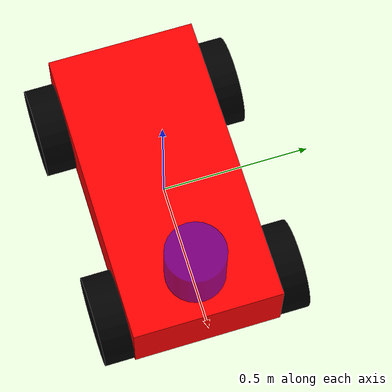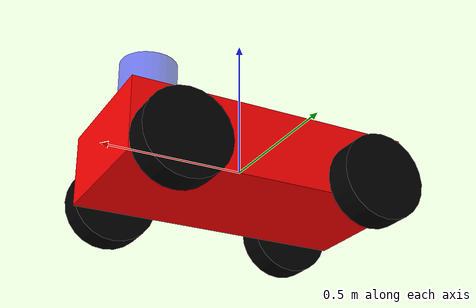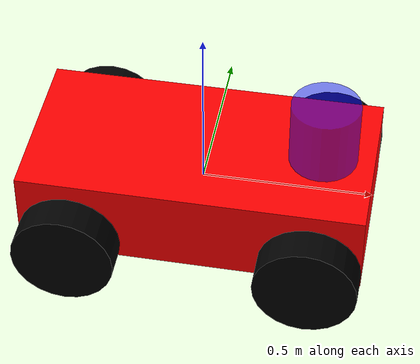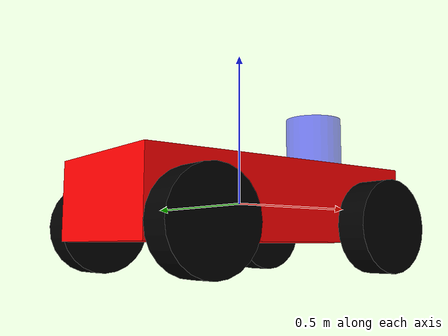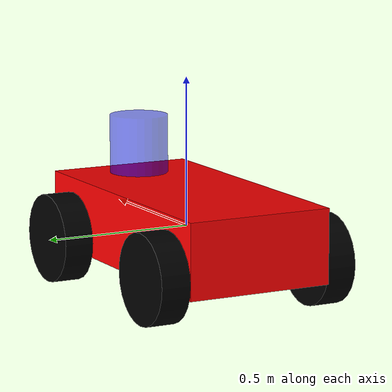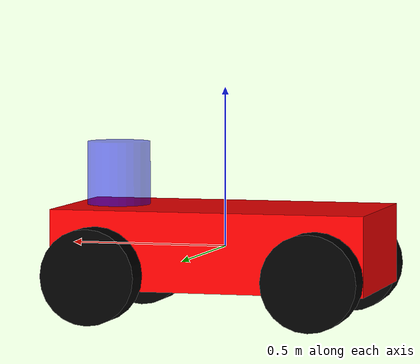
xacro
<?xml version="1.0"?>

<robot name="spechCar" xmlns:xacro="http://www.ros.org/wiki/xacro">

  <!-- Arguments -->
  <!-- Dimensiones y masas -->
  <xacro:arg name="body_length"             default="1.0"/>    <!-- 1 m de largo -->
  <xacro:arg name="body_width"              default="0.5"/>    <!-- 0.5 m de ancho -->
  <xacro:arg name="body_height"             default="0.25"/>   <!-- 0.25 m de alto -->
  <xacro:arg name="body_density"            default="500.0"/>  <!-- ≈0.125 m³ · 500 kg/m³ ≃ 62.5 kg, un chasis “plástico” robusto -->

  <xacro:arg name="wheel_radius"            default="0.15"/>   <!-- 15 cm de radio -->
  <xacro:arg name="wheel_width"             default="0.1"/>    <!-- 10 cm de ancho -->
  <xacro:arg name="wheel_density"           default="1200.0"/> <!-- 0.007 m³ · 1200 kg/m³ ≃ 8.4 kg por rueda (goma) -->

  <!-- Límites de dirección -->
  <xacro:arg name="max_steering_angle"            default="0.6108"/>  <!-- 35 ° realista para RC -->
  <xacro:arg name="max_steering_angular_velocity" default="2.0"/>     <!-- 2 rad/s → 115 °/s, reacción algo rápida -->
  <xacro:arg name="max_steering_effort"           default="20.0"/>    <!-- 20 N·m de torque en la dirección -->

  <!-- Límites de tracción -->
  <xacro:arg name="max_velocity"  default="5.0"/>    <!-- 5 m/s ≃ 18 km/h, tope para un RC pequeño -->
  <xacro:arg name="max_effort"    default="100.0"/>  <!-- 100 N·m de torque en las ruedas traseras -->

  <!-- Mathematical Constants -->
  <xacro:property name="PI" value="3.14159265"/>

  <!-- Vehicle Properties -->
  <xacro:property name="body_length" value="$(arg body_length)"/>
  <xacro:property name="body_width" value="$(arg body_width)"/>
  <xacro:property name="body_height" value="$(arg body_height)"/>
  <xacro:property name="body_density" value="$(arg body_density)"/>
  <xacro:property name="wheel_radius" value="$(arg wheel_radius)"/>
  <xacro:property name="wheel_width" value="$(arg wheel_width)"/>
  <xacro:property name="wheel_density" value="$(arg wheel_density)"/>
  <xacro:property name="max_steering_angle" value="$(arg max_steering_angle)"/>
  <xacro:property name="max_steering_angular_velocity" value="$(arg max_steering_angular_velocity)"/>
  <xacro:property name="max_steering_effort" value="$(arg max_steering_effort)"/>
  <xacro:property name="max_velocity" value="$(arg max_velocity)"/>
  <xacro:property name="max_effort" value="$(arg max_effort)"/>
  <xacro:property name="dump" value="0.1"/> <!-- Damping for joints -->
  <xacro:property name="frict" value="0.1"/> <!-- Friction for joints -->
  <xacro:property name="mu1" value="100.0"/>
  <xacro:property name="mu2" value="100.0"/>

  <xacro:property name="body_mass" value="${body_density * body_length * body_height * body_width}"/>
  <xacro:property name="body_inertia_x" value="${1.0/12.0 * body_mass * (body_height*body_height + body_width*body_width)}"/>
  <xacro:property name="body_inertia_y" value="${1.0/12.0 * body_mass * (body_length*body_length + body_height*body_height)}"/>
  <xacro:property name="body_inertia_z" value="${1.0/12.0 * body_mass * (body_length*body_length + body_width*body_width)}"/>
  <xacro:property name="wheel_separation" value="${body_width + wheel_width}"/>
  <xacro:property name="wheel_offset" value="${body_length/2 - wheel_radius}"/>
  <xacro:property name="wheel_mass" value="${wheel_density * PI * wheel_radius * wheel_radius * wheel_width}"/>
  <xacro:property name="wheel_inertia_x" value="${1.0/12.0 * wheel_mass * (3*wheel_radius*wheel_radius + wheel_width*wheel_width)}"/>
  <xacro:property name="wheel_inertia_y" value="${1.0/12.0 * wheel_mass * (3*wheel_radius*wheel_radius + wheel_width*wheel_width)}"/>
  <xacro:property name="wheel_inertia_z" value="${1.0/2.0 * wheel_mass * wheel_radius * wheel_radius}"/>
  <xacro:property name="max_wheel_angular_velocity" value="${max_velocity / wheel_radius}"/>
  <xacro:property name="lidar_offsetX" value="${body_length/2 - wheel_radius}"/>

  <!-- Physical Material Macros -->
    <material name="Red">
    	<color rgba="1.0 0 0 1.0"/>
    </material>
    <material name="Green">
    	<color rgba="0 1.0 0 1.0"/>
    </material>
    <material name="Blue">
    	<color rgba="0 0 1.0 0.5"/>
    </material>
    <material name="Black">
    	<color rgba="0 0 0 1.0"/>
    </material>
    <material name="Aqua">
    	<color rgba="0 1.0 1.0 1.0"/>
    </material>

  <!-- Links -->

  <!-- Body Link -->
  <link name="body_link">
    <visual>
      <origin xyz="0.0 0.0 0.0" rpy="0.0 0.0 0.0"/>
      <geometry>
        <box size="${body_length} ${body_width} ${body_height}"/>
      </geometry>
      <material name="Red"/>
    </visual>
    <collision>
      <origin xyz="0.0 0.0 0.0" rpy="0.0 0.0 0.0"/>
      <geometry>
        <box size="${body_length} ${body_width} ${body_height}"/>
      </geometry>
    </collision>
  </link>
  <gazebo reference="body_link">
    <material>Gazebo/Red</material>
  </gazebo>

  <!-- Body Base-->
  <link name="body_base_link">
    <visual>
      <origin xyz="0.0 0.0 0.0" rpy="0.0 0.0 0.0"/>
      <geometry>
        <box size="${body_length} ${body_width} ${body_height}"/>
      </geometry>
      <material name="Red"/>
    </visual>
    <collision>
      <origin xyz="0.0 0.0 0.0" rpy="0.0 0.0 0.0"/>
      <geometry>
        <box size="${body_length} ${body_width} ${body_height}"/>
      </geometry>
    </collision>
    <inertial>
      <mass value="${body_mass}"/>
      <inertia ixx="${body_inertia_x}" ixy="0.0" ixz="0.0" iyy="${body_inertia_y}" iyz="0" izz="${body_inertia_z}"/>
      <origin xyz="0.0 0.0 0.0" rpy="0.0 0.0 0.0"/>
    </inertial>
  </link>
  <gazebo reference="body_base_link">
    <material>Gazebo/Red</material>
  </gazebo>

  <!-- Front Left Wheel -->
  <link name="front_left_wheel_link">
    <visual>
      <origin xyz="0.0 0.0 0.0" rpy="1.570795 0.0 0.0"/>
      <geometry>
        <cylinder radius="${wheel_radius}" length="${wheel_width}"/>
      </geometry>
      <material name="Black"/>
    </visual>
    <collision>
      <origin xyz="0.0 0.0 0.0" rpy="1.570795 0.0 0.0"/>
      <geometry>
        <cylinder radius="${wheel_radius}" length="${wheel_width}"/>
      </geometry>
    </collision>
    <inertial>
      <mass value="${wheel_mass}"/>
      <inertia ixx="${wheel_inertia_x}" ixy="0.0" ixz="0.0" iyy="${wheel_inertia_y}" iyz="0" izz="${wheel_inertia_z}"/>
      <origin xyz="0.0 0.0 0.0" rpy="1.570795 0.0 0.0"/>
    </inertial>
  </link>
  <gazebo reference="front_left_wheel_link">
    <material>Gazebo/Black</material>
  </gazebo>

    <!-- Front Left Wheel Steering -->
  <link name="front_left_steering_link">
    <visual>
      <origin xyz="0.0 0.0 0.0" rpy="1.570795 0.0 0.0"/>
      <geometry>
        <cylinder length="0.001" radius="0.01"/>
      </geometry>
      <material name="Black"/>
    </visual>
    <collision>
      <origin xyz="0.0 0.0 0.0" rpy="1.570795 0.0 0.0"/>
      <geometry>
        <cylinder length="0.001" radius="0.01"/>
      </geometry>
    </collision>
    <inertial>
      <mass value="0.01"/>
      <inertia ixx="0.0" ixy="0.0" ixz="0.0" iyy="0.0" iyz="0.0" izz="0.0"/>
      <origin xyz="0.0 0.0 0.0" rpy="1.570795 0.0 0.0"/>
    </inertial>
  </link>
  <gazebo reference="front_left_steering_link">
    <material>Gazebo/Black</material>
  </gazebo>

  <!-- Front Right Wheel -->
  <link name="front_right_wheel_link">
    <visual>
      <origin xyz="0.0 0.0 0.0" rpy="1.570795 0.0 0.0"/>
      <geometry>
        <cylinder radius="${wheel_radius}" length="${wheel_width}"/>
      </geometry>
      <material name="Black"/>
    </visual>
    <collision>
      <origin xyz="0.0 0.0 0.0" rpy="1.570795 0.0 0.0"/>
      <geometry>
        <cylinder radius="${wheel_radius}" length="${wheel_width}"/>
      </geometry>
    </collision>
    <inertial>
      <mass value="${wheel_mass}"/>
      <inertia ixx="${wheel_inertia_x}" ixy="0.0" ixz="0.0" iyy="${wheel_inertia_y}" iyz="0" izz="${wheel_inertia_z}"/>
      <origin xyz="0.0 0.0 0.0" rpy="1.570795 0.0 0.0"/>
    </inertial>
  </link>
  <gazebo reference="front_right_wheel_link">
    <material>Gazebo/Black</material>
  </gazebo>

  <!-- Front Right Wheel Steering -->
  <link name="front_right_steering_link">
    <visual>
      <origin xyz="0.0 0.0 0.0" rpy="1.570795 0.0 0.0"/>
      <geometry>
        <cylinder length="0.001" radius="0.01"/>
      </geometry>
      <material name="Black"/>
    </visual>
    <collision>
      <origin xyz="0.0 0.0 0.0" rpy="1.570795 0.0 0.0"/>
      <geometry>
        <cylinder length="0.001" radius="0.01"/>
      </geometry>
    </collision>
    <inertial>
      <mass value="0.01"/>
      <inertia ixx="0.0" ixy="0.0" ixz="0.0" iyy="0.0" iyz="0.0" izz="0.0"/>
      <origin xyz="0.0 0.0 0.0" rpy="1.570795 0.0 0.0"/>
    </inertial>
  </link>
  <gazebo reference="front_right_steering_link">
    <material>Gazebo/Black</material>
  </gazebo>

  <!-- Rear Left Wheel -->
  <link name="rear_left_wheel_link">
    <visual>
      <origin xyz="0.0 0.0 0.0" rpy="1.570795 0.0 0.0"/>
      <geometry>
        <cylinder radius="${wheel_radius}" length="${wheel_width}"/>
      </geometry>
      <material name="Black"/>
    </visual>
    <collision>
      <origin xyz="0.0 0.0 0.0" rpy="1.570795 0.0 0.0"/>
      <geometry>
        <cylinder radius="${wheel_radius}" length="${wheel_width}"/>
      </geometry>
    </collision>
    <inertial>
      <mass value="${wheel_mass}"/>
      <inertia ixx="${wheel_inertia_x}" ixy="0.0" ixz="0.0" iyy="${wheel_inertia_y}" iyz="0" izz="${wheel_inertia_z}"/>
      <origin xyz="0.0 0.0 0.0" rpy="1.570795 0.0 0.0"/>
    </inertial>
  </link>
  <gazebo reference="rear_left_wheel_link">
    <material>Gazebo/Black</material>
  </gazebo>

  <!-- Rear Right Wheel -->
  <link name="rear_right_wheel_link">
    <visual>
      <origin xyz="0.0 0.0 0.0" rpy="1.570795 0.0 0.0"/>
      <geometry>
        <cylinder radius="${wheel_radius}" length="${wheel_width}"/>
      </geometry>
      <material name="Black"/>
    </visual>
    <collision>
      <origin xyz="0.0 0.0 0.0" rpy="1.570795 0.0 0.0"/>
      <geometry>
        <cylinder radius="${wheel_radius}" length="${wheel_width}"/>
      </geometry>
    </collision>
    <inertial>
      <mass value="${wheel_mass}"/>
      <inertia ixx="${wheel_inertia_x}" ixy="0.0" ixz="0.0" iyy="${wheel_inertia_y}" iyz="0" izz="${wheel_inertia_z}"/>
      <origin xyz="0.0 0.0 0.0" rpy="1.570795 0.0 0.0"/>
    </inertial>
  </link>
  <gazebo reference="rear_right_wheel_link">
    <material>Gazebo/Black</material>
  </gazebo>

  <!-- Joints -->

  <!-- Body Base Joint -->
  <joint name="body_base_joint" type="fixed">
    <origin xyz="0 0 0" rpy="0 0 0"/>
    <parent link="body_link"/>
    <child link="body_base_link"/>
  </joint>

  <!-- Front Left Steering Joint -->
  <joint name="front_left_steering_joint" type="revolute">
    <origin xyz="${wheel_offset} ${wheel_separation/2} -${wheel_radius/2}" rpy="0 0 0"/>
    <parent link="body_link"/>
    <child link="front_left_steering_link"/>
    <axis xyz="0 0 1"/>
    <limit effort="${max_steering_effort}" lower="${-max_steering_angle}" upper="${max_steering_angle}" velocity="${max_steering_angular_velocity}"/>
    <dynamics damping="${dump}" friction="${frict}"/>
  </joint>

  <!-- Front Left Wheel Joint -->
  <joint name="front_left_wheel_joint" type="continuous">
    <origin xyz="0 0 0" rpy="0 0 0"/>
    <parent link="front_left_steering_link"/>
    <child link="front_left_wheel_link"/>
    <axis xyz="0 1 0"/>
    <limit effort="${max_effort}" velocity="${max_wheel_angular_velocity}"/>
    <dynamics damping="${dump}" friction="${frict}"/>
  </joint>

  <!-- Front Right Steering Joint -->
  <joint name="front_right_steering_joint" type="revolute">
    <origin xyz="${wheel_offset} ${-wheel_separation/2} -${wheel_radius/2}" rpy="0 0 0"/>
    <parent link="body_link"/>
    <child link="front_right_steering_link"/>
    <axis xyz="0 0 1"/>
    <limit effort="${max_steering_effort}" lower="${-max_steering_angle}" upper="${max_steering_angle}" velocity="${max_steering_angular_velocity}"/>
    <dynamics damping="${dump}" friction="${frict}"/>
  </joint>

  <!-- Front Right Wheel Joint -->
  <joint name="front_right_wheel_joint" type="continuous">
    <origin xyz="0 0 0" rpy="0 0 0"/>
    <parent link="front_right_steering_link"/>
    <child link="front_right_wheel_link"/>
    <axis xyz="0 1 0"/>
    <limit effort="${max_effort}" velocity="${max_wheel_angular_velocity}"/>
    <dynamics damping="${dump}" friction="${frict}"/>
  </joint>

  <!-- Rear Left Wheel Joint -->
  <joint name="rear_left_wheel_joint" type="continuous">
    <origin xyz="-${wheel_offset} ${wheel_separation/2} -${wheel_radius/2}" rpy="0 0 0"/>
    <parent link="body_link"/>
    <child link="rear_left_wheel_link"/>
    <axis xyz="0 1 0"/>
    <limit effort="${max_effort}" velocity="${max_wheel_angular_velocity}"/>
    <dynamics damping="${dump}" friction="${frict}"/>
  </joint>

  <!-- Rear Right Wheel Joint -->
  <joint name="rear_right_wheel_joint" type="continuous">
    <origin xyz="-${wheel_offset} ${-wheel_separation/2} -${wheel_radius/2}" rpy="0 0 0"/>
    <parent link="body_link"/>
    <child link="rear_right_wheel_link"/>
    <axis xyz="0 1 0"/>
    <limit effort="${max_effort}" velocity="${max_wheel_angular_velocity}"/>
    <dynamics damping="${dump}" friction="${frict}"/>
  </joint>

  <!-- Gazebo Parameters -->

  <gazebo reference="front_right_wheel_link">
    <mu1>${mu1}</mu1>
    <mu2>${mu2}</mu2>
  </gazebo>

  <gazebo reference="front_left_wheel_link">
    <mu1>${mu1}</mu1>
    <mu2>${mu2}</mu2>
  </gazebo>

  <gazebo reference="rear_right_wheel_link">
    <mu1>${mu1}</mu1>
    <mu2>${mu2}</mu2>
  </gazebo>

  <gazebo reference="rear_left_wheel_link">
    <mu1>${mu1}</mu1>
    <mu2>${mu2}</mu2>
  </gazebo>

  <!-- Gazebo Plugins -->
  <gazebo>
    <plugin name="rc_car_controller" filename="libgazebo_ros_ackermann_drive.so">
      <ros>
        <cmd_vel_topic>/cmd_vel</cmd_vel_topic>
        <odometry_topic>/odom</odometry_topic>
      </ros>

      <update_rate>100</update_rate>
      <command_timeout>0.5</command_timeout>

      <!-- wheels -->
      <front_left_joint>front_left_wheel_joint</front_left_joint>
      <front_right_joint>front_right_wheel_joint</front_right_joint>
      <rear_left_joint>rear_left_wheel_joint</rear_left_joint>
      <rear_right_joint>rear_right_wheel_joint</rear_right_joint>
      <left_steering_joint>front_left_steering_joint</left_steering_joint>
      <right_steering_joint>front_right_steering_joint</right_steering_joint>

      <!-- Max absolute steer angle for tyre in radians-->
      <!-- Any cmd_vel angular z greater than this would be capped -->
      <max_steer>${max_steering_angular_velocity}</max_steer>

      <!-- Max absolute steering angle of steering wheel -->
      <max_steering_angle>${max_steering_angle}</max_steering_angle>

      <!-- Max absolute linear speed in m/s -->
      <max_speed>${max_velocity}</max_speed>

      <!-- PID tuning -->
      <left_steering_pid_gain>1000 0 10</left_steering_pid_gain>
      <left_steering_i_range>0 -0</left_steering_i_range>
      <right_steering_pid_gain>1000 0 10</right_steering_pid_gain>
      <right_steering_i_range>0 -0</right_steering_i_range>
      <linear_velocity_pid_gain>1000 0 1</linear_velocity_pid_gain>
      <linear_velocity_i_range>0 -0</linear_velocity_i_range>

      <!-- output -->
      <publish_odom>true</publish_odom>
      <publish_odom_tf>true</publish_odom_tf>
      <publish_wheel_tf>true</publish_wheel_tf>
      <publish_distance>true</publish_distance>

      <odometry_frame>odom</odometry_frame>
      <robot_base_frame>body_link</robot_base_frame>
    </plugin>
  </gazebo>

  <!--Lidar-->
  <link name="lidar_link">
    <inertial>
      <mass value="0.001"/>
      <inertia ixx="0.0001" iyy="0.0001" izz="0.0001" ixy="0" ixz="0" iyz="0"/>
    </inertial>
    <visual name="lidar_visual">
      <geometry>
        <cylinder radius="0.1" length="0.2"/>
      </geometry>
      <material name="Blue"/>
    </visual>
    <collision name="lidar_collision">
      <geometry>
        <cylinder radius="0.1" length="0.2"/>
      </geometry>
    </collision>
  </link>
  <gazebo reference="lidar_link">
    <material>Gazebo/Blue</material>
  </gazebo>

  <!-- Junta fija para montar el LIDAR sobre el chasis -->
  <joint name="lidar_joint" type="fixed">
    <parent link="body_link"/>
    <child link="lidar_link"/>
    <!-- Ajusta la posición para que el LIDAR se monte, por ejemplo, en el techo del chasis -->
    <origin xyz="${lidar_offsetX} 0 ${body_height/2 + 0.2/2}" rpy="0 0 0"/>
  </joint>

  <!-- Definición del sensor LIDAR para Gazebo -->
  <gazebo reference="lidar_link">
    <sensor name="lidar_sensor" type="ray">
      <always_on>true</always_on>
      <update_rate>10</update_rate>
      <visualize>false</visualize>
      <pose>0 0 0 0 0 0</pose>
      <ray>
        <scan>
          <horizontal>
            <samples>180</samples>
            <resolution>1</resolution>
            <min_angle>-3.1416</min_angle>
            <max_angle>3.1416</max_angle>
          </horizontal>
        </scan>
        <range>
          <min>0.11</min>
          <max>10.0</max>
          <resolution>0.004359297</resolution>
        </range>
        <noise>
          <type>gaussian</type>
          <mean>0.0</mean>
          <stddev>0.01</stddev>
        </noise>
      </ray>
      <!-- Plugin para publicar la información del LIDAR en ROS -->
      <plugin name="Laser_sensor" filename="libgazebo_ros_ray_sensor.so">
        <frame_name>lidar_link</frame_name>
        <ros>
          <remapping>~/out:=scan</remapping>
        </ros>
        <output_type>sensor_msgs/LaserScan</output_type>
      </plugin>
    </sensor>
  </gazebo>
</robot>
